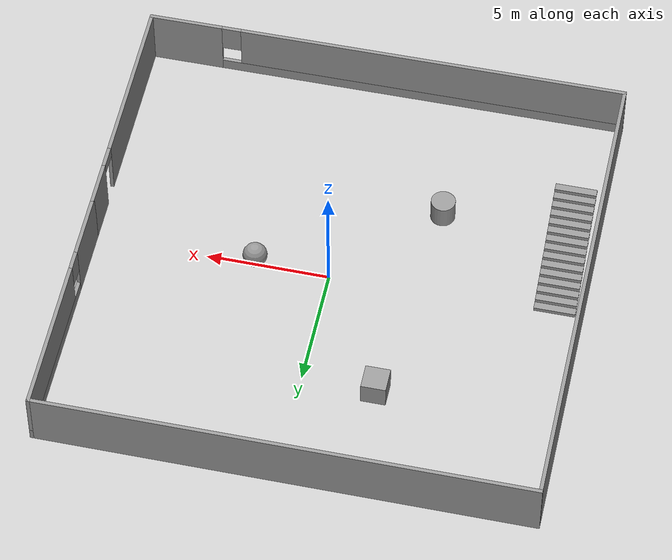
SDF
<sdf version="1.7">
 <world name="default">
  <light name="sun" type="directional">
   <pose>0 0 10 0 -0 0</pose>
   <diffuse>0.8 0.8 0.8 1</diffuse>
   <specular>0.2 0.2 0.2 1</specular>
   <attenuation>
    <range>1000</range>
    <constant>0.9</constant>
    <linear>0.01</linear>
    <quadratic>0.001</quadratic>
   </attenuation>
   <direction>-0.5 0.1 -0.9</direction>
   <spot><inner_angle>0</inner_angle><outer_angle>0</outer_angle><falloff>0</falloff></spot>
  </light>
  <model name="ground_plane">
   <static>1</static>
   <link name="link">
    <collision name="collision">
     <geometry><plane><normal>0 0 1</normal><size>100 100</size></plane></geometry>
     <surface>
      <contact><collide_bitmask>65535</collide_bitmask></contact>
      <friction><ode><mu>100</mu><mu2>50</mu2></ode></friction>
     </surface>
    </collision>
    <visual name="visual">
     <cast_shadows>0</cast_shadows>
     <geometry><plane><normal>0 0 1</normal><size>100 100</size></plane></geometry>
     <material>
      <script><uri>file://media/materials/scripts/gazebo.material</uri><name>Gazebo/Grey</name></script>
     </material>
    </visual>
   </link>
  </model>
  <gravity>0 0 -9.8</gravity>
  <magnetic_field>6e-06 2.3e-05 -4.2e-05</magnetic_field>
  <atmosphere type="adiabatic"/>
  <physics type="ode">
   <max_step_size>0.001</max_step_size>
   <real_time_factor>1</real_time_factor>
   <real_time_update_rate>1000</real_time_update_rate>
  </physics>
  <scene><ambient>0.4 0.4 0.4 1</ambient><background>0.7 0.7 0.7 1</background><shadows>1</shadows></scene>
  <audio><device>default</device></audio>
  <spherical_coordinates>
   <surface_model>EARTH_WGS84</surface_model>
   <latitude_deg>0</latitude_deg>
   <longitude_deg>0</longitude_deg>
   <elevation>0</elevation>
   <heading_deg>0</heading_deg>
  </spherical_coordinates>
  <model name="square">
   <pose>-0.315 0 0 0 -0 0</pose>
   <link name="Stairs_0">
    <visual name="Stairs_0_Visual_0">
     <pose>-8.82557 -0.262972 0.083333 0 -0 0</pose>
     <geometry><box><size>1.67681 0.303065 0.166667</size></box></geometry>
     <material>
      <script><uri>file://media/materials/scripts/gazebo.material</uri><name>Gazebo/Grey</name></script>
      <ambient>1 1 1 1</ambient>
     </material>
     <meta><layer>0</layer></meta>
    </visual>
    <collision name="Stairs_0_Collision_0">
     <geometry><box><size>1.67681 0.303065 0.166667</size></box></geometry>
     <pose>-8.82557 -0.262972 0.083333 0 -0 0</pose>
    </collision>
    <visual name="Stairs_0_Visual_1">
     <pose>-8.82557 -0.566037 0.25 0 -0 0</pose>
     <geometry><box><size>1.67681 0.303065 0.166667</size></box></geometry>
     <material>
      <script><uri>file://media/materials/scripts/gazebo.material</uri><name>Gazebo/Grey</name></script>
      <ambient>1 1 1 1</ambient>
     </material>
     <meta><layer>0</layer></meta>
    </visual>
    <collision name="Stairs_0_Collision_1">
     <geometry><box><size>1.67681 0.303065 0.166667</size></box></geometry>
     <pose>-8.82557 -0.566037 0.25 0 -0 0</pose>
    </collision>
    <visual name="Stairs_0_Visual_2">
     <pose>-8.82557 -0.869102 0.416667 0 -0 0</pose>
     <geometry><box><size>1.67681 0.303065 0.166667</size></box></geometry>
     <material>
      <script><uri>file://media/materials/scripts/gazebo.material</uri><name>Gazebo/Grey</name></script>
      <ambient>1 1 1 1</ambient>
     </material>
     <meta><layer>0</layer></meta>
    </visual>
    <collision name="Stairs_0_Collision_2">
     <geometry><box><size>1.67681 0.303065 0.166667</size></box></geometry>
     <pose>-8.82557 -0.869102 0.416667 0 -0 0</pose>
    </collision>
    <visual name="Stairs_0_Visual_3">
     <pose>-8.82557 -1.17217 0.583333 0 -0 0</pose>
     <geometry><box><size>1.67681 0.303065 0.166667</size></box></geometry>
     <material>
      <script><uri>file://media/materials/scripts/gazebo.material</uri><name>Gazebo/Grey</name></script>
      <ambient>1 1 1 1</ambient>
     </material>
     <meta><layer>0</layer></meta>
    </visual>
    <collision name="Stairs_0_Collision_3">
     <geometry><box><size>1.67681 0.303065 0.166667</size></box></geometry>
     <pose>-8.82557 -1.17217 0.583333 0 -0 0</pose>
    </collision>
    <visual name="Stairs_0_Visual_4">
     <pose>-8.82557 -1.47523 0.75 0 -0 0</pose>
     <geometry><box><size>1.67681 0.303065 0.166667</size></box></geometry>
     <material>
      <script><uri>file://media/materials/scripts/gazebo.material</uri><name>Gazebo/Grey</name></script>
      <ambient>1 1 1 1</ambient>
     </material>
     <meta><layer>0</layer></meta>
    </visual>
    <collision name="Stairs_0_Collision_4">
     <geometry><box><size>1.67681 0.303065 0.166667</size></box></geometry>
     <pose>-8.82557 -1.47523 0.75 0 -0 0</pose>
    </collision>
    <visual name="Stairs_0_Visual_5">
     <pose>-8.82557 -1.7783 0.916667 0 -0 0</pose>
     <geometry><box><size>1.67681 0.303065 0.166667</size></box></geometry>
     <material>
      <script><uri>file://media/materials/scripts/gazebo.material</uri><name>Gazebo/Grey</name></script>
      <ambient>1 1 1 1</ambient>
     </material>
     <meta><layer>0</layer></meta>
    </visual>
    <collision name="Stairs_0_Collision_5">
     <geometry><box><size>1.67681 0.303065 0.166667</size></box></geometry>
     <pose>-8.82557 -1.7783 0.916667 0 -0 0</pose>
    </collision>
    <visual name="Stairs_0_Visual_6">
     <pose>-8.82557 -2.08136 1.08333 0 -0 0</pose>
     <geometry><box><size>1.67681 0.303065 0.166667</size></box></geometry>
     <material>
      <script><uri>file://media/materials/scripts/gazebo.material</uri><name>Gazebo/Grey</name></script>
      <ambient>1 1 1 1</ambient>
     </material>
     <meta><layer>0</layer></meta>
    </visual>
    <collision name="Stairs_0_Collision_6">
     <geometry><box><size>1.67681 0.303065 0.166667</size></box></geometry>
     <pose>-8.82557 -2.08136 1.08333 0 -0 0</pose>
    </collision>
    <visual name="Stairs_0_Visual_7">
     <pose>-8.82557 -2.38443 1.25 0 -0 0</pose>
     <geometry><box><size>1.67681 0.303065 0.166667</size></box></geometry>
     <material>
      <script><uri>file://media/materials/scripts/gazebo.material</uri><name>Gazebo/Grey</name></script>
      <ambient>1 1 1 1</ambient>
     </material>
     <meta><layer>0</layer></meta>
    </visual>
    <collision name="Stairs_0_Collision_7">
     <geometry><box><size>1.67681 0.303065 0.166667</size></box></geometry>
     <pose>-8.82557 -2.38443 1.25 0 -0 0</pose>
    </collision>
    <visual name="Stairs_0_Visual_8">
     <pose>-8.82557 -2.68749 1.41667 0 -0 0</pose>
     <geometry><box><size>1.67681 0.303065 0.166667</size></box></geometry>
     <material>
      <script><uri>file://media/materials/scripts/gazebo.material</uri><name>Gazebo/Grey</name></script>
      <ambient>1 1 1 1</ambient>
     </material>
     <meta><layer>0</layer></meta>
    </visual>
    <collision name="Stairs_0_Collision_8">
     <geometry><box><size>1.67681 0.303065 0.166667</size></box></geometry>
     <pose>-8.82557 -2.68749 1.41667 0 -0 0</pose>
    </collision>
    <visual name="Stairs_0_Visual_9">
     <pose>-8.82557 -2.99056 1.58333 0 -0 0</pose>
     <geometry><box><size>1.67681 0.303065 0.166667</size></box></geometry>
     <material>
      <script><uri>file://media/materials/scripts/gazebo.material</uri><name>Gazebo/Grey</name></script>
      <ambient>1 1 1 1</ambient>
     </material>
     <meta><layer>0</layer></meta>
    </visual>
    <collision name="Stairs_0_Collision_9">
     <geometry><box><size>1.67681 0.303065 0.166667</size></box></geometry>
     <pose>-8.82557 -2.99056 1.58333 0 -0 0</pose>
    </collision>
    <visual name="Stairs_0_Visual_10">
     <pose>-8.82557 -3.29362 1.75 0 -0 0</pose>
     <geometry><box><size>1.67681 0.303065 0.166667</size></box></geometry>
     <material>
      <script><uri>file://media/materials/scripts/gazebo.material</uri><name>Gazebo/Grey</name></script>
      <ambient>1 1 1 1</ambient>
     </material>
     <meta><layer>0</layer></meta>
    </visual>
    <collision name="Stairs_0_Collision_10">
     <geometry><box><size>1.67681 0.303065 0.166667</size></box></geometry>
     <pose>-8.82557 -3.29362 1.75 0 -0 0</pose>
    </collision>
    <visual name="Stairs_0_Visual_11">
     <pose>-8.82557 -3.59669 1.91667 0 -0 0</pose>
     <geometry><box><size>1.67681 0.303065 0.166667</size></box></geometry>
     <material>
      <script><uri>file://media/materials/scripts/gazebo.material</uri><name>Gazebo/Grey</name></script>
      <ambient>1 1 1 1</ambient>
     </material>
     <meta><layer>0</layer></meta>
    </visual>
    <collision name="Stairs_0_Collision_11">
     <geometry><box><size>1.67681 0.303065 0.166667</size></box></geometry>
     <pose>-8.82557 -3.59669 1.91667 0 -0 0</pose>
    </collision>
    <visual name="Stairs_0_Visual_12">
     <pose>-8.82557 -3.89975 2.08333 0 -0 0</pose>
     <geometry><box><size>1.67681 0.303065 0.166667</size></box></geometry>
     <material>
      <script><uri>file://media/materials/scripts/gazebo.material</uri><name>Gazebo/Grey</name></script>
      <ambient>1 1 1 1</ambient>
     </material>
     <meta><layer>0</layer></meta>
    </visual>
    <collision name="Stairs_0_Collision_12">
     <geometry><box><size>1.67681 0.303065 0.166667</size></box></geometry>
     <pose>-8.82557 -3.89975 2.08333 0 -0 0</pose>
    </collision>
    <visual name="Stairs_0_Visual_13">
     <pose>-8.82557 -4.20282 2.25 0 -0 0</pose>
     <geometry><box><size>1.67681 0.303065 0.166667</size></box></geometry>
     <material>
      <script><uri>file://media/materials/scripts/gazebo.material</uri><name>Gazebo/Grey</name></script>
      <ambient>1 1 1 1</ambient>
     </material>
     <meta><layer>0</layer></meta>
    </visual>
    <collision name="Stairs_0_Collision_13">
     <geometry><box><size>1.67681 0.303065 0.166667</size></box></geometry>
     <pose>-8.82557 -4.20282 2.25 0 -0 0</pose>
    </collision>
    <visual name="Stairs_0_Visual_14">
     <pose>-8.82557 -4.50588 2.41667 0 -0 0</pose>
     <geometry><box><size>1.67681 0.303065 0.166667</size></box></geometry>
     <material>
      <script><uri>file://media/materials/scripts/gazebo.material</uri><name>Gazebo/Grey</name></script>
      <ambient>1 1 1 1</ambient>
     </material>
     <meta><layer>0</layer></meta>
    </visual>
    <collision name="Stairs_0_Collision_14">
     <geometry><box><size>1.67681 0.303065 0.166667</size></box></geometry>
     <pose>-8.82557 -4.50588 2.41667 0 -0 0</pose>
    </collision>
   </link>
   <link name="Wall_10">
    <collision name="Wall_10_Collision">
     <geometry><box><size>20.0003 0.15 2.5</size></box></geometry>
     <pose>0 0 1.25 0 -0 0</pose>
    </collision>
    <visual name="Wall_10_Visual">
     <pose>0 0 1.25 0 -0 0</pose>
     <geometry><box><size>20.0003 0.15 2.5</size></box></geometry>
     <material>
      <script><uri>file://media/materials/scripts/gazebo.material</uri><name>Gazebo/Grey</name></script>
      <ambient>1 1 1 1</ambient>
     </material>
     <meta><layer>0</layer></meta>
    </visual>
    <pose>-0 9.85 0 0 -0 3.14159</pose>
   </link>
   <link name="Wall_4">
    <pose>9.925 4.925 0 0 -0 1.5708</pose>
    <visual name="Wall_4_Visual_0">
     <pose>-3.63211 0 1.25 0 -0 0</pose>
     <geometry><box><size>2.73579 0.15 2.5</size></box></geometry>
     <material>
      <script><uri>file://media/materials/scripts/gazebo.material</uri><name>Gazebo/Grey</name></script>
      <ambient>1 1 1 1</ambient>
     </material>
     <meta><layer>0</layer></meta>
    </visual>
    <collision name="Wall_4_Collision_0">
     <geometry><box><size>2.73579 0.15 2.5</size></box></geometry>
     <pose>-3.63211 0 1.25 0 -0 0</pose>
    </collision>
    <visual name="Wall_4_Visual_1">
     <pose>1.3679 0 0.25 0 -0 0</pose>
     <geometry><box><size>7.26421 0.15 0.5</size></box></geometry>
     <material>
      <script><uri>file://media/materials/scripts/gazebo.material</uri><name>Gazebo/Grey</name></script>
      <ambient>1 1 1 1</ambient>
     </material>
     <meta><layer>0</layer></meta>
    </visual>
    <collision name="Wall_4_Collision_1">
     <geometry><box><size>7.26421 0.15 0.5</size></box></geometry>
     <pose>1.3679 0 0.25 0 -0 0</pose>
    </collision>
    <visual name="Wall_4_Visual_2">
     <pose>1.76789 0 1.5 0 -0 0</pose>
     <geometry><box><size>6.46421 0.15 2</size></box></geometry>
     <material>
      <script><uri>file://media/materials/scripts/gazebo.material</uri><name>Gazebo/Grey</name></script>
      <ambient>1 1 1 1</ambient>
     </material>
     <meta><layer>0</layer></meta>
    </visual>
    <collision name="Wall_4_Collision_2">
     <geometry><box><size>6.46421 0.15 2</size></box></geometry>
     <pose>1.76789 0 1.5 0 -0 0</pose>
    </collision>
    <visual name="Wall_4_Visual_3">
     <pose>-1.86421 0 1.9 0 -0 0</pose>
     <geometry><box><size>0.8 0.15 1.2</size></box></geometry>
     <material>
      <script><uri>file://media/materials/scripts/gazebo.material</uri><name>Gazebo/Grey</name></script>
      <ambient>1 1 1 1</ambient>
     </material>
     <meta><layer>0</layer></meta>
    </visual>
    <collision name="Wall_4_Collision_3">
     <geometry><box><size>0.8 0.15 1.2</size></box></geometry>
     <pose>-1.86421 0 1.9 0 -0 0</pose>
    </collision>
   </link>
   <link name="Wall_6">
    <pose>9.925 -4.925 0 0 -0 -1.5708</pose>
    <visual name="Wall_6_Visual_0">
     <pose>-4.0722 0 1.25 0 -0 0</pose>
     <geometry><box><size>1.85561 0.15 2.5</size></box></geometry>
     <material>
      <script><uri>file://media/materials/scripts/gazebo.material</uri><name>Gazebo/Grey</name></script>
      <ambient>1 1 1 1</ambient>
     </material>
     <meta><layer>0</layer></meta>
    </visual>
    <collision name="Wall_6_Collision_0">
     <geometry><box><size>1.85561 0.15 2.5</size></box></geometry>
     <pose>-4.0722 0 1.25 0 -0 0</pose>
    </collision>
    <visual name="Wall_6_Visual_1">
     <pose>1.3778 0 1.25 0 -0 0</pose>
     <geometry><box><size>7.24439 0.15 2.5</size></box></geometry>
     <material>
      <script><uri>file://media/materials/scripts/gazebo.material</uri><name>Gazebo/Grey</name></script>
      <ambient>1 1 1 1</ambient>
     </material>
     <meta><layer>0</layer></meta>
    </visual>
    <collision name="Wall_6_Collision_1">
     <geometry><box><size>7.24439 0.15 2.5</size></box></geometry>
     <pose>1.3778 0 1.25 0 -0 0</pose>
    </collision>
    <visual name="Wall_6_Visual_2">
     <pose>-2.69439 0 2.25 0 -0 0</pose>
     <geometry><box><size>0.9 0.15 0.5</size></box></geometry>
     <material>
      <script><uri>file://media/materials/scripts/gazebo.material</uri><name>Gazebo/Grey</name></script>
      <ambient>1 1 1 1</ambient>
     </material>
     <meta><layer>0</layer></meta>
    </visual>
    <collision name="Wall_6_Collision_2">
     <geometry><box><size>0.9 0.15 0.5</size></box></geometry>
     <pose>-2.69439 0 2.25 0 -0 0</pose>
    </collision>
   </link>
   <link name="Wall_7">
    <pose>-0 -9.85 0 0 -0 3.14159</pose>
    <visual name="Wall_7_Visual_0">
     <pose>-8.46282 0 1.25 0 -0 0</pose>
     <geometry><box><size>3.07437 0.15 2.5</size></box></geometry>
     <material>
      <script><uri>file://media/materials/scripts/gazebo.material</uri><name>Gazebo/Grey</name></script>
      <ambient>1 1 1 1</ambient>
     </material>
     <meta><layer>0</layer></meta>
    </visual>
    <collision name="Wall_7_Collision_0">
     <geometry><box><size>3.07437 0.15 2.5</size></box></geometry>
     <pose>-8.46282 0 1.25 0 -0 0</pose>
    </collision>
    <visual name="Wall_7_Visual_1">
     <pose>1.53718 0 0.25 0 -0 0</pose>
     <geometry><box><size>16.9256 0.15 0.5</size></box></geometry>
     <material>
      <script><uri>file://media/materials/scripts/gazebo.material</uri><name>Gazebo/Grey</name></script>
      <ambient>1 1 1 1</ambient>
     </material>
     <meta><layer>0</layer></meta>
    </visual>
    <collision name="Wall_7_Collision_1">
     <geometry><box><size>16.9256 0.15 0.5</size></box></geometry>
     <pose>1.53718 0 0.25 0 -0 0</pose>
    </collision>
    <visual name="Wall_7_Visual_2">
     <pose>1.93718 0 1.5 0 -0 0</pose>
     <geometry><box><size>16.1256 0.15 2</size></box></geometry>
     <material>
      <script><uri>file://media/materials/scripts/gazebo.material</uri><name>Gazebo/Grey</name></script>
      <ambient>1 1 1 1</ambient>
     </material>
     <meta><layer>0</layer></meta>
    </visual>
    <collision name="Wall_7_Collision_2">
     <geometry><box><size>16.1256 0.15 2</size></box></geometry>
     <pose>1.93718 0 1.5 0 -0 0</pose>
    </collision>
    <visual name="Wall_7_Visual_3">
     <pose>-6.52563 0 1.9 0 -0 0</pose>
     <geometry><box><size>0.8 0.15 1.2</size></box></geometry>
     <material>
      <script><uri>file://media/materials/scripts/gazebo.material</uri><name>Gazebo/Grey</name></script>
      <ambient>1 1 1 1</ambient>
     </material>
     <meta><layer>0</layer></meta>
    </visual>
    <collision name="Wall_7_Collision_3">
     <geometry><box><size>0.8 0.15 1.2</size></box></geometry>
     <pose>-6.52563 0 1.9 0 -0 0</pose>
    </collision>
   </link>
   <link name="Wall_8">
    <collision name="Wall_8_Collision">
     <geometry><box><size>19.75 0.15 2.5</size></box></geometry>
     <pose>0 0 1.25 0 -0 0</pose>
    </collision>
    <visual name="Wall_8_Visual">
     <pose>0 0 1.25 0 -0 0</pose>
     <geometry><box><size>19.75 0.15 2.5</size></box></geometry>
     <material>
      <script><uri>file://media/materials/scripts/gazebo.material</uri><name>Gazebo/Grey</name></script>
      <ambient>1 1 1 1</ambient>
     </material>
     <meta><layer>0</layer></meta>
    </visual>
    <pose>-9.925 -0.05 0 0 -0 1.5708</pose>
   </link>
   <link name="Window_1">
    <collision name="Window_1_Collision">
     <geometry><box><size>0.8 0.17 0.8</size></box></geometry>
     <pose>0 0 0.4 0 -0 0</pose>
    </collision>
    <visual name="Window_1_Visual">
     <pose>0 0 0.4 0 -0 0</pose>
     <geometry><box><size>0.8 0.17 0.8</size></box></geometry>
     <material>
      <script><uri>file://media/materials/scripts/gazebo.material</uri><name>Gazebo/Grey</name></script>
     </material>
    </visual>
    <pose>0.188261 9.76733 0.5 0 -0 0</pose>
   </link>
   <static>1</static>
  </model>
  <model name="unit_sphere">
   <pose>3.042 -0.139726 0.5 0 -0 0</pose>
   <link name="link">
    <inertial>
     <mass>1</mass>
     <inertia><ixx>0.1</ixx><ixy>0</ixy><ixz>0</ixz><iyy>0.1</iyy><iyz>0</iyz><izz>0.1</izz></inertia>
    </inertial>
    <collision name="collision"><geometry><sphere><radius>0.5</radius></sphere></geometry></collision>
    <visual name="visual">
     <geometry><sphere><radius>0.5</radius></sphere></geometry>
     <material>
      <script><name>Gazebo/Grey</name><uri>file://media/materials/scripts/gazebo.material</uri></script>
     </material>
    </visual>
   </link>
  </model>
  <model name="unit_cylinder">
   <pose>-3.88425 -3.98562 0.499993 -3e-06 -4e-06 -0</pose>
   <link name="link">
    <inertial>
     <mass>1</mass>
     <inertia><ixx>0.145833</ixx><ixy>0</ixy><ixz>0</ixz><iyy>0.145833</iyy><iyz>0</iyz><izz>0.125</izz></inertia>
    </inertial>
    <collision name="collision">
     <geometry><cylinder><radius>0.5</radius><length>1</length></cylinder></geometry>
    </collision>
    <visual name="visual">
     <geometry><cylinder><radius>0.5</radius><length>1</length></cylinder></geometry>
     <material>
      <script><name>Gazebo/Grey</name><uri>file://media/materials/scripts/gazebo.material</uri></script>
     </material>
    </visual>
   </link>
  </model>
  <model name="unit_box">
   <pose>-2.96309 5.08728 0.5 0 -0 0</pose>
   <link name="link">
    <inertial>
     <mass>1</mass>
     <inertia>
      <ixx>0.166667</ixx>
      <ixy>0</ixy>
      <ixz>0</ixz>
      <iyy>0.166667</iyy>
      <iyz>0</iyz>
      <izz>0.166667</izz>
     </inertia>
    </inertial>
    <collision name="collision"><geometry><box><size>1 1 1</size></box></geometry></collision>
    <visual name="visual">
     <geometry><box><size>1 1 1</size></box></geometry>
     <material>
      <script><name>Gazebo/Grey</name><uri>file://media/materials/scripts/gazebo.material</uri></script>
     </material>
    </visual>
   </link>
  </model>
 </world>
</sdf>
